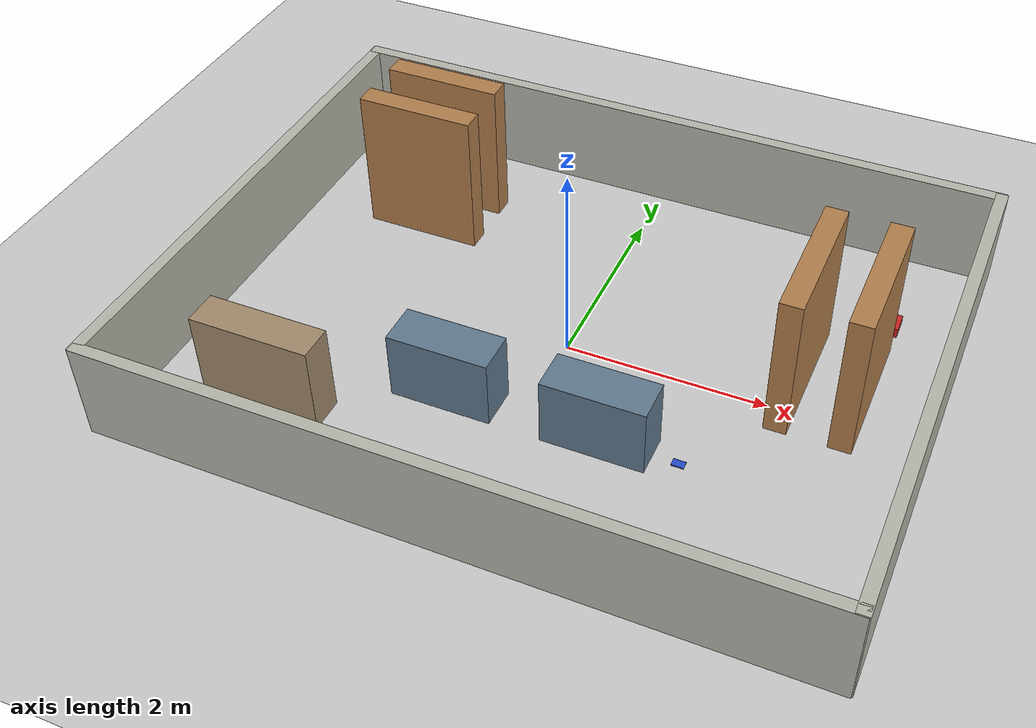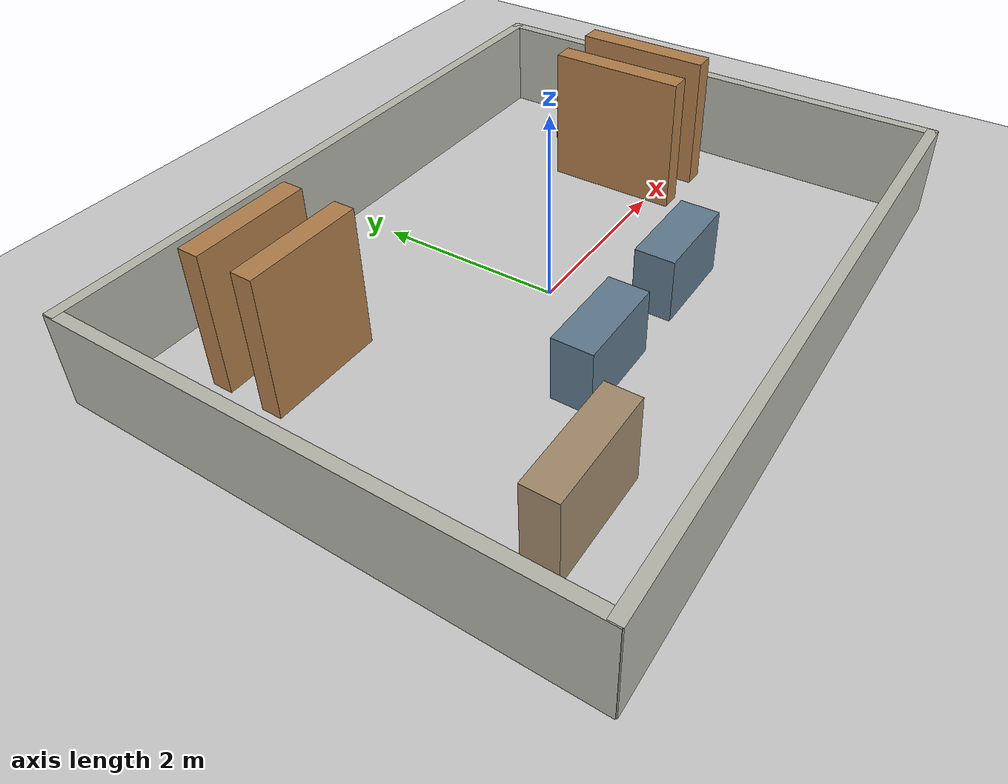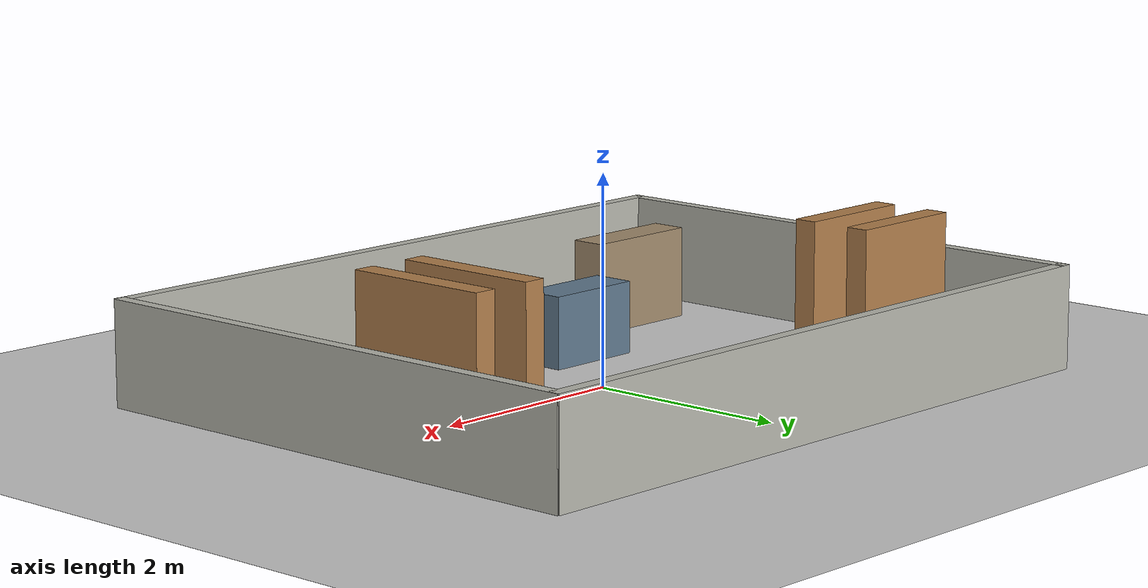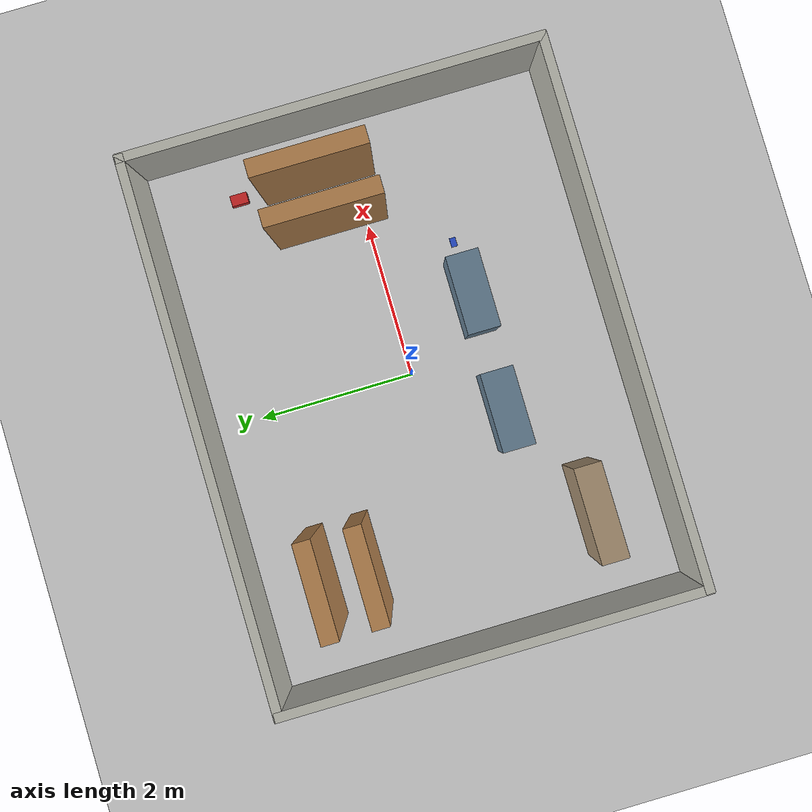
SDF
<?xml version="1.0" ?>
<sdf version="1.6">
  <world name="library_world">
    <plugin name="gazebo_ros_state" filename="libgazebo_ros_state.so"/>
    <include><uri>model://sun</uri></include>
    <include><uri>model://ground_plane</uri></include>

    <model name="north_wall">
      <pose>0 2.65 0.5 0 0 0</pose>
      <static>true</static>
      <link name="link">
        <collision name="collision"><geometry><box><size>7.0 0.12 1.0</size></box></geometry></collision>
        <visual name="visual"><geometry><box><size>7.0 0.12 1.0</size></box></geometry><material><ambient>0.72 0.72 0.68 1</ambient><diffuse>0.72 0.72 0.68 1</diffuse></material></visual>
      </link>
    </model>

    <model name="south_wall">
      <pose>0 -2.65 0.5 0 0 0</pose>
      <static>true</static>
      <link name="link">
        <collision name="collision"><geometry><box><size>7.0 0.12 1.0</size></box></geometry></collision>
        <visual name="visual"><geometry><box><size>7.0 0.12 1.0</size></box></geometry><material><ambient>0.72 0.72 0.68 1</ambient><diffuse>0.72 0.72 0.68 1</diffuse></material></visual>
      </link>
    </model>

    <model name="west_wall">
      <pose>-3.45 0 0.5 0 0 0</pose>
      <static>true</static>
      <link name="link">
        <collision name="collision"><geometry><box><size>0.12 5.4 1.0</size></box></geometry></collision>
        <visual name="visual"><geometry><box><size>0.12 5.4 1.0</size></box></geometry><material><ambient>0.72 0.72 0.68 1</ambient><diffuse>0.72 0.72 0.68 1</diffuse></material></visual>
      </link>
    </model>

    <model name="east_wall">
      <pose>3.45 0 0.5 0 0 0</pose>
      <static>true</static>
      <link name="link">
        <collision name="collision"><geometry><box><size>0.12 5.4 1.0</size></box></geometry></collision>
        <visual name="visual"><geometry><box><size>0.12 5.4 1.0</size></box></geometry><material><ambient>0.72 0.72 0.68 1</ambient><diffuse>0.72 0.72 0.68 1</diffuse></material></visual>
      </link>
    </model>

    <model name="shelf_a1">
      <pose>2.15 0.45 0.75 0 0 0</pose>
      <static>true</static>
      <link name="link">
        <collision name="collision"><geometry><box><size>0.22 1.45 1.5</size></box></geometry></collision>
        <visual name="visual"><geometry><box><size>0.22 1.45 1.5</size></box></geometry><material><script><name>Gazebo/Wood</name></script></material></visual>
      </link>
    </model>

    <model name="shelf_a2">
      <pose>2.75 0.45 0.75 0 0 0</pose>
      <static>true</static>
      <link name="link">
        <collision name="collision"><geometry><box><size>0.22 1.45 1.5</size></box></geometry></collision>
        <visual name="visual"><geometry><box><size>0.22 1.45 1.5</size></box></geometry><material><script><name>Gazebo/Wood</name></script></material></visual>
      </link>
    </model>

    <model name="shelf_b1">
      <pose>-2.1 1.15 0.75 0 0 0</pose>
      <static>true</static>
      <link name="link">
        <collision name="collision"><geometry><box><size>1.2 0.22 1.5</size></box></geometry></collision>
        <visual name="visual"><geometry><box><size>1.2 0.22 1.5</size></box></geometry><material><script><name>Gazebo/Wood</name></script></material></visual>
      </link>
    </model>

    <model name="shelf_b2">
      <pose>-2.1 1.75 0.75 0 0 0</pose>
      <static>true</static>
      <link name="link">
        <collision name="collision"><geometry><box><size>1.2 0.22 1.5</size></box></geometry></collision>
        <visual name="visual"><geometry><box><size>1.2 0.22 1.5</size></box></geometry><material><script><name>Gazebo/Wood</name></script></material></visual>
      </link>
    </model>

    <model name="desk_1">
      <pose>-0.75 -1.0 0.35 0 0 0</pose>
      <static>true</static>
      <link name="link">
        <collision name="collision"><geometry><box><size>1.0 0.42 0.7</size></box></geometry></collision>
        <visual name="visual"><geometry><box><size>1.0 0.42 0.7</size></box></geometry><material><ambient>0.38 0.48 0.56 1</ambient><diffuse>0.38 0.48 0.56 1</diffuse></material></visual>
      </link>
    </model>

    <model name="desk_2">
      <pose>0.75 -1.0 0.35 0 0 0</pose>
      <static>true</static>
      <link name="link">
        <collision name="collision"><geometry><box><size>1.0 0.42 0.7</size></box></geometry></collision>
        <visual name="visual"><geometry><box><size>1.0 0.42 0.7</size></box></geometry><material><ambient>0.38 0.48 0.56 1</ambient><diffuse>0.38 0.48 0.56 1</diffuse></material></visual>
      </link>
    </model>

    <model name="service_counter">
      <pose>-2.25 -1.7 0.45 0 0 0</pose>
      <static>true</static>
      <link name="link">
        <collision name="collision"><geometry><box><size>1.2 0.35 0.9</size></box></geometry></collision>
        <visual name="visual"><geometry><box><size>1.2 0.35 0.9</size></box></geometry><material><ambient>0.64 0.55 0.43 1</ambient><diffuse>0.64 0.55 0.43 1</diffuse></material></visual>
      </link>
    </model>

    <model name="hazard_socket_red">
      <pose>2.8 1.5 0.05 0 0 0</pose>
      <static>true</static>
      <link name="link">
        <collision name="collision"><geometry><box><size>0.14 0.22 0.1</size></box></geometry></collision>
        <visual name="visual"><geometry><box><size>0.14 0.22 0.1</size></box></geometry><material><script><name>Gazebo/Red</name></script></material></visual>
      </link>
    </model>

    <model name="lost_card_blue">
      <pose>1.5 -1.0 0.015 0 0 0</pose>
      <static>true</static>
      <link name="link">
        <collision name="collision"><geometry><box><size>0.12 0.08 0.01</size></box></geometry></collision>
        <visual name="visual"><geometry><box><size>0.12 0.08 0.01</size></box></geometry><material><script><name>Gazebo/Blue</name></script></material></visual>
      </link>
    </model>
  </world>
</sdf>
